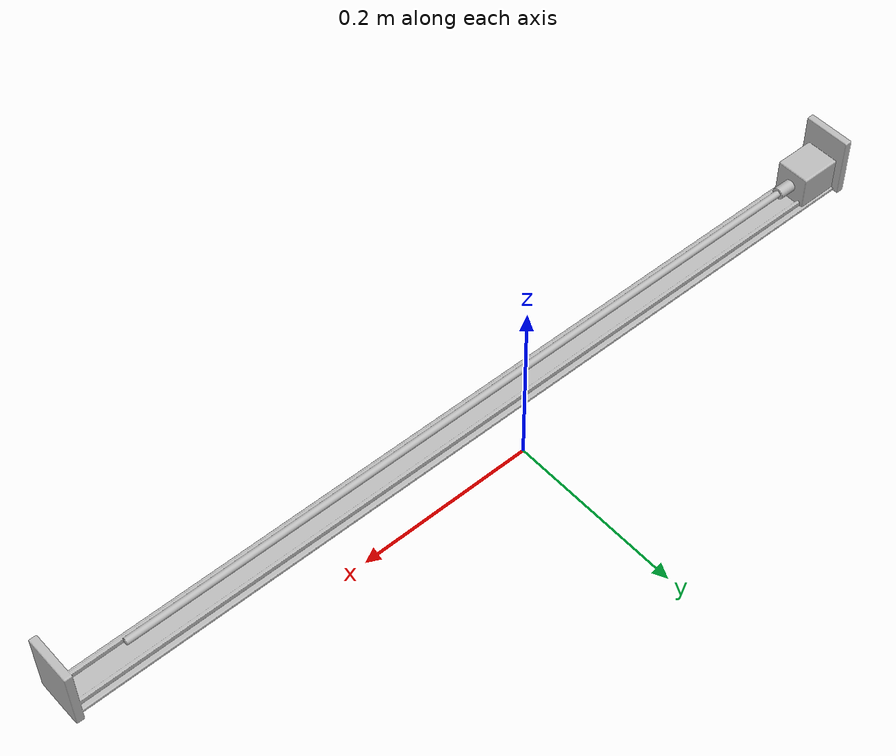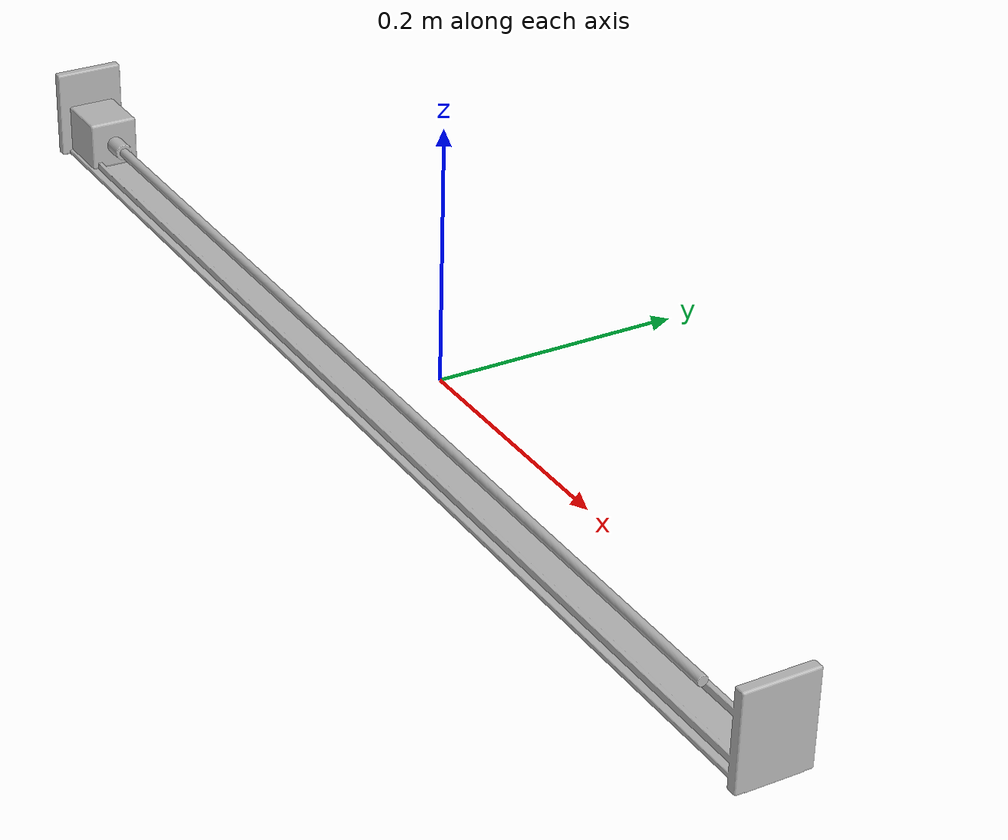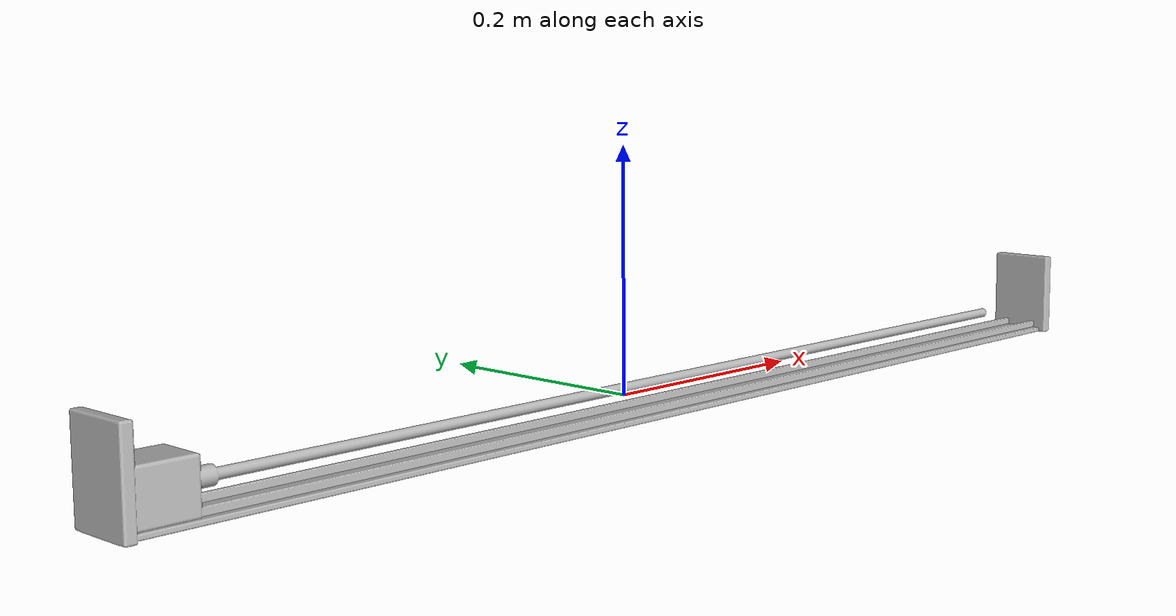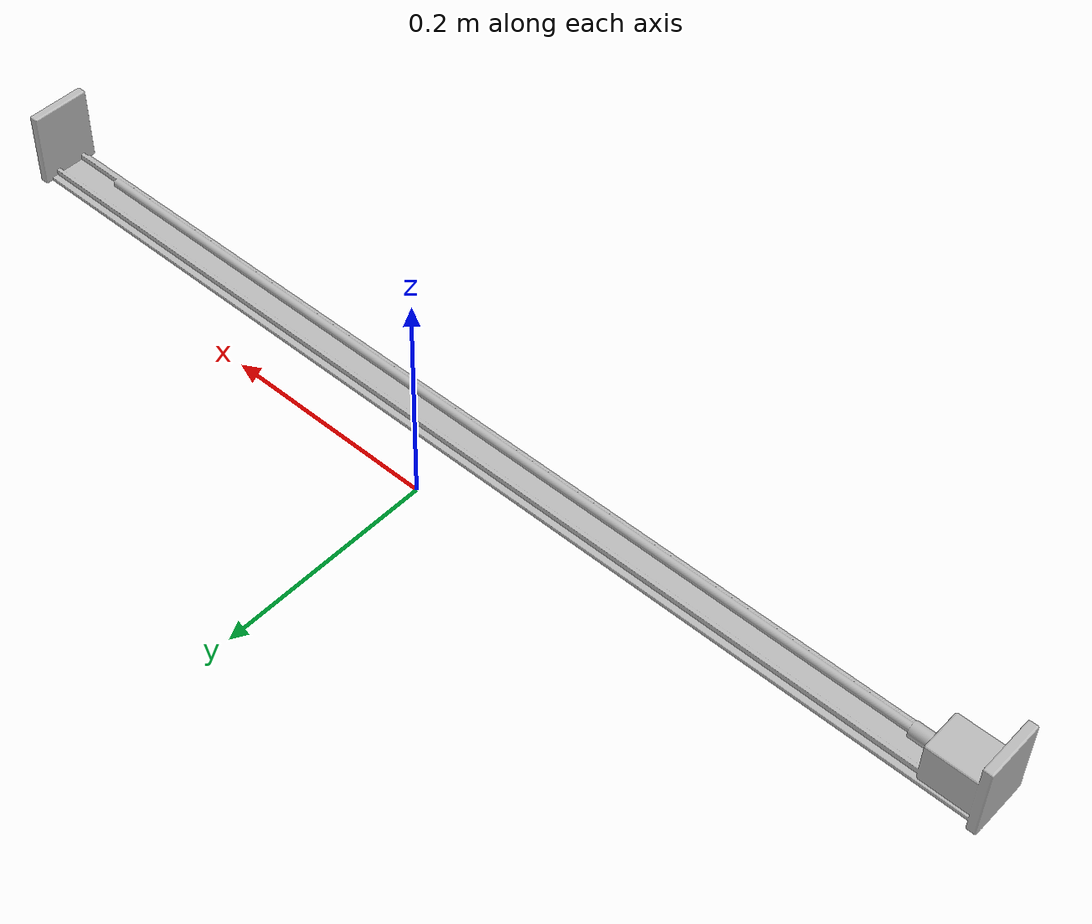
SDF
<?xml version="1.0"?>
<sdf version="1.10">
  <model name="linear_rail">
    <static>true</static>
    <link name="base_link">
      <inertial>
        <pose>0.000000 -0.063000 0.036500 0 0 0</pose>
        <mass>6.0000</mass>
        <inertia>
          <ixx>0.00423250</ixx><ixy>0</ixy><ixz>0</ixz>
          <iyy>0.50266450</iyy><iyz>0</iyz>
          <izz>0.50156800</izz>
        </inertia>
      </inertial>
      <collision name="collision">
        <pose>0.000000 -0.063000 0.036500 0 0 0</pose>
        <geometry>
          <box><size>1.000000 0.056000 0.073000</size></box>
        </geometry>
        <surface>
          <friction><ode><mu>0.9</mu><mu2>0.9</mu2></ode></friction>
        </surface>
      </collision>
      <visual name="visual">
        <geometry>
          <mesh><uri>model://linear_rail/meshes/linear_rail.obj</uri></mesh>
        </geometry>
      </visual>
    </link>
  </model>
</sdf>
